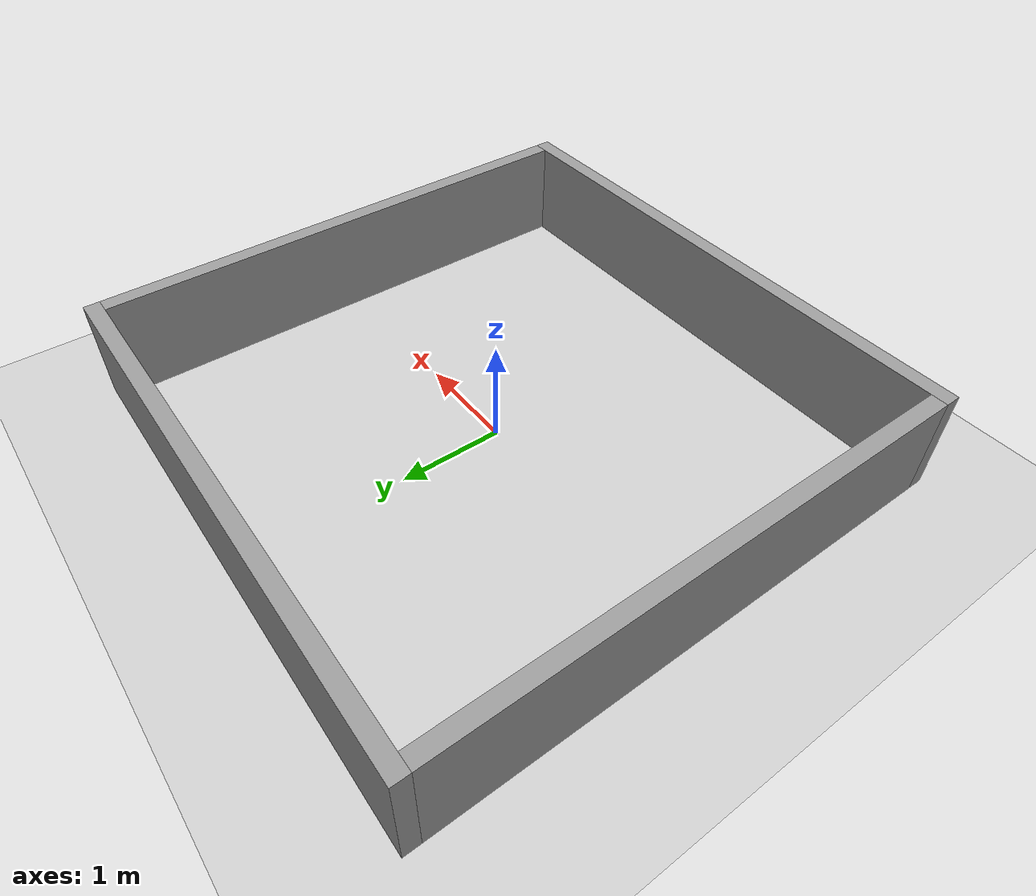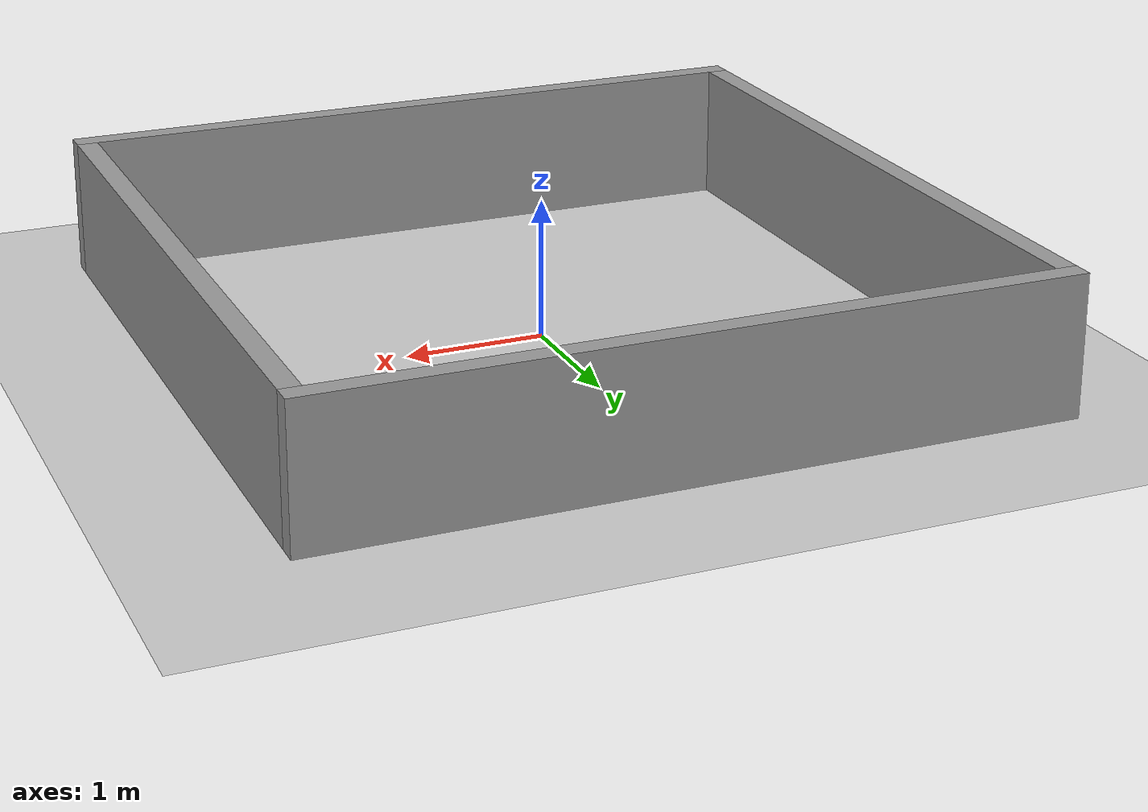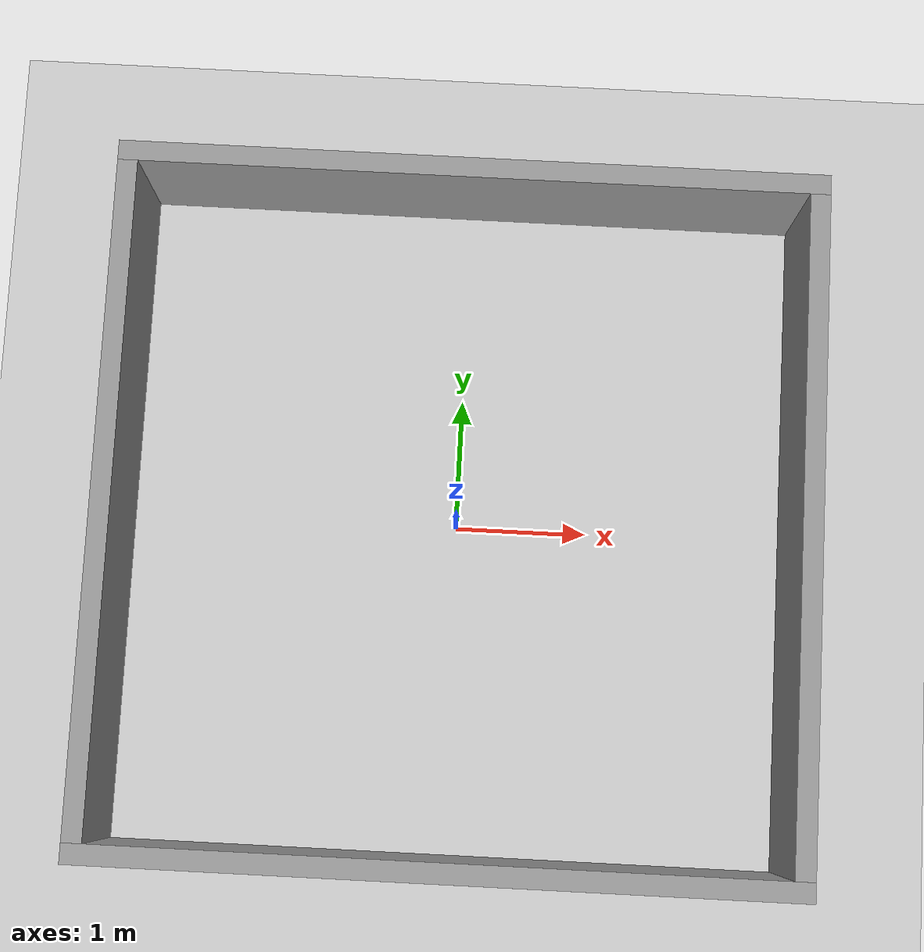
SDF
<?xml version="1.0"?>
<sdf version="1.6">
  <world name="mcl_room">

    <!-- Lighting -->
    <include>
      <uri>model://sun</uri>
    </include>

    <!-- Ground plane -->
    <include>
      <uri>model://ground_plane</uri>
    </include>

    <!-- Physics tuning for differential-drive robot -->
    <physics type="ode">
      <real_time_update_rate>1000.0</real_time_update_rate>
      <max_step_size>0.001</max_step_size>
      <real_time_factor>1</real_time_factor>
      <ode>
        <solver>
          <type>quick</type>
          <iters>150</iters>
          <precon_iters>0</precon_iters>
          <sor>1.400000</sor>
          <use_dynamic_moi_rescaling>1</use_dynamic_moi_rescaling>
        </solver>
        <constraints>
          <cfm>0.00001</cfm>
          <erp>0.2</erp>
          <contact_max_correcting_vel>2000.000000</contact_max_correcting_vel>
          <contact_surface_layer>0.01000</contact_surface_layer>
        </constraints>
      </ode>
    </physics>

    <model name="north_wall">
      <static>true</static>
      <pose>0 2.575 0.5 0 0 0</pose>
      <link name="link">
        <collision name="collision">
          <geometry>
            <box>
              <size>5.3 0.15 1.0</size>
            </box>
          </geometry>
        </collision>
        <visual name="visual">
          <geometry>
            <box>
              <size>5.3 0.15 1.0</size>
            </box>
          </geometry>
          <material>
            <ambient>0.6 0.6 0.6 1</ambient>
            <diffuse>0.6 0.6 0.6 1</diffuse>
          </material>
        </visual>
      </link>
    </model>

    <!-- =========================================================
         SOUTH WALL  (y = -2.575)
         ========================================================= -->
    <model name="south_wall">
      <static>true</static>
      <pose>0 -2.575 0.5 0 0 0</pose>
      <link name="link">
        <collision name="collision">
          <geometry>
            <box>
              <size>5.3 0.15 1.0</size>
            </box>
          </geometry>
        </collision>
        <visual name="visual">
          <geometry>
            <box>
              <size>5.3 0.15 1.0</size>
            </box>
          </geometry>
          <material>
            <ambient>0.6 0.6 0.6 1</ambient>
            <diffuse>0.6 0.6 0.6 1</diffuse>
          </material>
        </visual>
      </link>
    </model>

    <model name="east_wall">
      <static>true</static>
      <pose>2.575 0 0.5 0 0 0</pose>
      <link name="link">
        <collision name="collision">
          <geometry>
            <box>
              <size>0.15 5.0 1.0</size>
            </box>
          </geometry>
        </collision>
        <visual name="visual">
          <geometry>
            <box>
              <size>0.15 5.0 1.0</size>
            </box>
          </geometry>
          <material>
            <ambient>0.6 0.6 0.6 1</ambient>
            <diffuse>0.6 0.6 0.6 1</diffuse>
          </material>
        </visual>
      </link>
    </model>

    <!-- =========================================================
         WEST WALL  (x = -2.575)
         ========================================================= -->
    <model name="west_wall">
      <static>true</static>
      <pose>-2.575 0 0.5 0 0 0</pose>
      <link name="link">
        <collision name="collision">
          <geometry>
            <box>
              <size>0.15 5.0 1.0</size>
            </box>
          </geometry>
        </collision>
        <visual name="visual">
          <geometry>
            <box>
              <size>0.15 5.0 1.0</size>
            </box>
          </geometry>
          <material>
            <ambient>0.6 0.6 0.6 1</ambient>
            <diffuse>0.6 0.6 0.6 1</diffuse>
          </material>
        </visual>
      </link>
    </model>

  </world>
</sdf>
